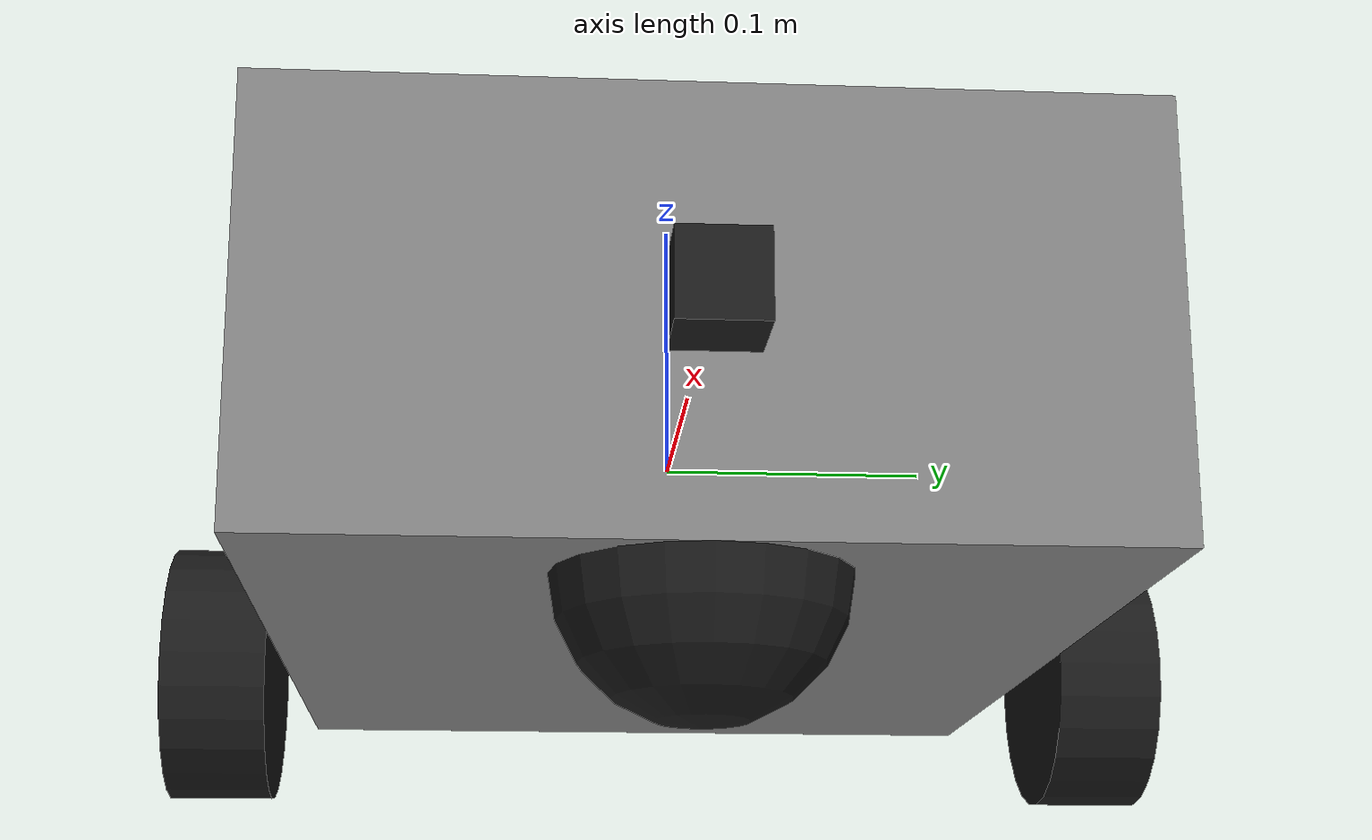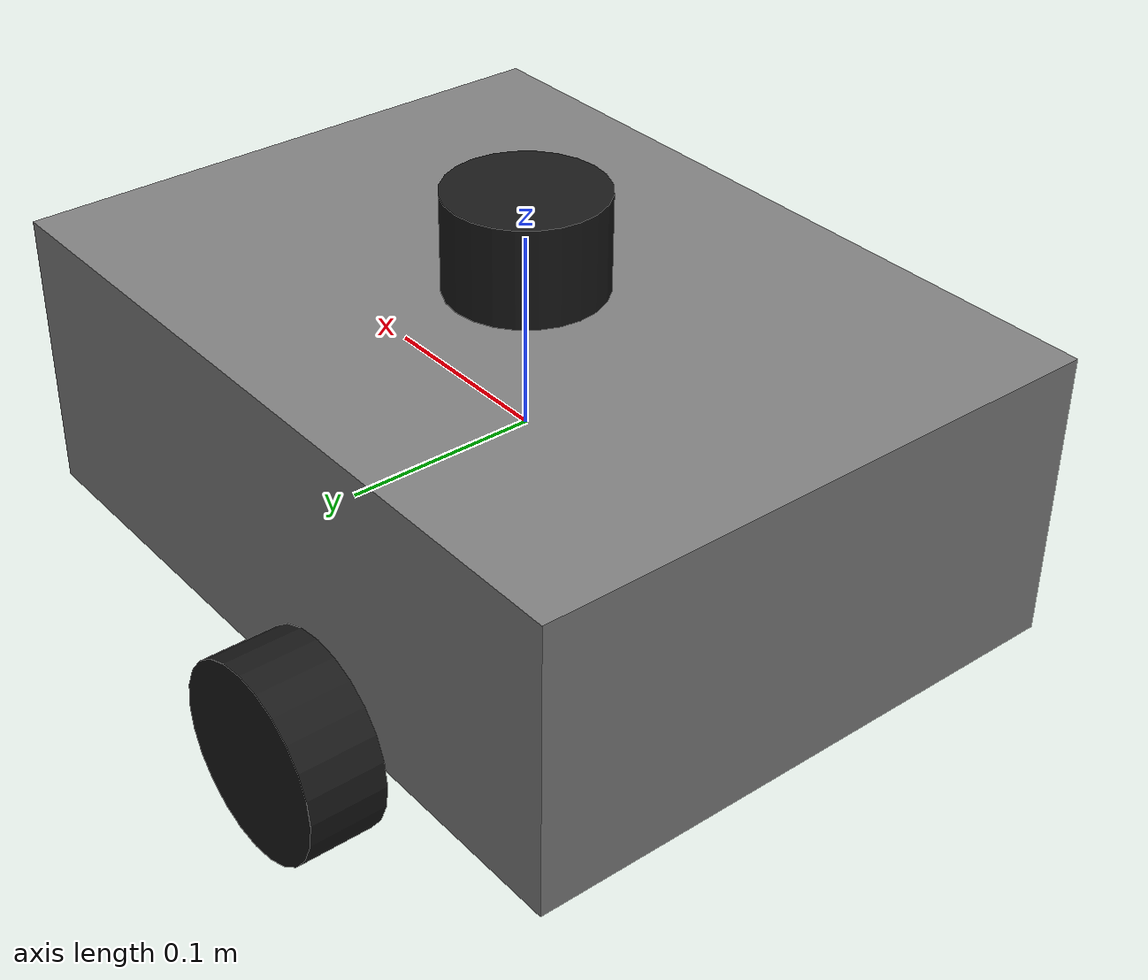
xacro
<?xml version="1.0"?>
<robot name="my_robot" xmlns:xacro="http://www.ros.org/wiki/xacro">

  <!-- ===================== Parameters ===================== -->
  <xacro:property name="base_length" value="0.40"/>
  <xacro:property name="base_width"  value="0.30"/>
  <xacro:property name="base_height" value="0.15"/>

  <xacro:property name="wheel_radius"      value="0.05"/>
  <xacro:property name="wheel_width"       value="0.04"/>
  <xacro:property name="wheel_separation"  value="0.35"/>

  <xacro:property name="caster_radius" value="0.05"/>

  <material name="grey">
    <color rgba="0.5 0.5 0.5 1"/>
  </material>
  <material name="black">
    <color rgba="0.1 0.1 0.1 1"/>
  </material>

  <!-- ===================== Base ===================== -->
  <link name="base_link">
    <visual>
      <geometry>
        <box size="${base_length} ${base_width} ${base_height}"/>
      </geometry>
      <material name="grey"/>
    </visual>
    <collision>
      <geometry>
        <box size="${base_length} ${base_width} ${base_height}"/>
      </geometry>
    </collision>
    <inertial>
      <mass value="5.0"/>
      <origin xyz="0 0 0"/>
      <inertia ixx="0.05" ixy="0" ixz="0" iyy="0.06" iyz="0" izz="0.09"/>
    </inertial>
  </link>

  <!-- ===================== Wheels ===================== -->
  <xacro:macro name="wheel" params="prefix reflect">
    <link name="${prefix}_wheel_link">
      <visual>
        <origin xyz="0 0 0" rpy="1.5708 0 0"/>
        <geometry>
          <cylinder radius="${wheel_radius}" length="${wheel_width}"/>
        </geometry>
        <material name="black"/>
      </visual>
      <collision>
        <origin xyz="0 0 0" rpy="1.5708 0 0"/>
        <geometry>
          <cylinder radius="${wheel_radius}" length="${wheel_width}"/>
        </geometry>
      </collision>
      <inertial>
        <mass value="0.5"/>
        <origin xyz="0 0 0"/>
        <inertia ixx="0.001" ixy="0" ixz="0" iyy="0.001" iyz="0" izz="0.001"/>
      </inertial>
    </link>

    <joint name="${prefix}_wheel_joint" type="continuous">
      <parent link="base_link"/>
      <child link="${prefix}_wheel_link"/>
      <origin xyz="-0.05 ${reflect*wheel_separation/2} ${-base_height/2}" rpy="0 0 0"/>
      <axis xyz="0 1 0"/>
      <dynamics damping="0.1" friction="0.0"/>
    </joint>

    <gazebo reference="${prefix}_wheel_link">
      <material>Gazebo/Black</material>
      <mu1>1.0</mu1>
      <mu2>1.0</mu2>
    </gazebo>
  </xacro:macro>

  <xacro:wheel prefix="left"  reflect="1"/>
  <xacro:wheel prefix="right" reflect="-1"/>

  <!-- ===================== Caster (передняя опора) ===================== -->
  <link name="caster_link">
    <visual>
      <geometry>
        <sphere radius="${caster_radius}"/>
      </geometry>
      <material name="black"/>
    </visual>
    <collision>
      <geometry>
        <sphere radius="${caster_radius}"/>
      </geometry>
    </collision>
    <inertial>
      <mass value="0.2"/>
      <origin xyz="0 0 0"/>
      <inertia ixx="0.0001" ixy="0" ixz="0" iyy="0.0001" iyz="0" izz="0.0001"/>
    </inertial>
  </link>

  <joint name="caster_joint" type="fixed">
    <parent link="base_link"/>
    <child link="caster_link"/>
    <origin xyz="${base_length/2 - caster_radius} 0 ${-base_height/2 - caster_radius + wheel_radius}" rpy="0 0 0"/>
  </joint>

  <gazebo reference="caster_link">
    <material>Gazebo/Black</material>
    <!-- низкое трение, чтобы каster не мешал повороту -->
    <mu1>0.0</mu1>
    <mu2>0.0</mu2>
  </gazebo>

  <gazebo reference="base_link">
    <material>Gazebo/Grey</material>
  </gazebo>

  <!-- ===================== Lidar ===================== -->
  <xacro:property name="lidar_radius" value="0.04"/>
  <xacro:property name="lidar_height" value="0.05"/>

  <link name="lidar_link">
    <visual>
      <geometry>
        <cylinder radius="${lidar_radius}" length="${lidar_height}"/>
      </geometry>
      <material name="black"/>
    </visual>
    <collision>
      <geometry>
        <cylinder radius="${lidar_radius}" length="${lidar_height}"/>
      </geometry>
    </collision>
    <inertial>
      <mass value="0.15"/>
      <origin xyz="0 0 0"/>
      <inertia ixx="0.0001" ixy="0" ixz="0" iyy="0.0001" iyz="0" izz="0.0001"/>
    </inertial>
  </link>

  <joint name="lidar_joint" type="fixed">
    <parent link="base_link"/>
    <child link="lidar_link"/>
    <!-- по центру сверху корпуса -->
    <origin xyz="0 0 ${base_height/2 + lidar_height/2}" rpy="0 0 0"/>
  </joint>

  <gazebo reference="lidar_link">
    <material>Gazebo/Black</material>
    <sensor type="ray" name="lidar_sensor">
      <pose>0 0 0 0 0 0</pose>
      <visualize>true</visualize>
      <update_rate>10</update_rate>
      <ray>
        <scan>
          <horizontal>
            <samples>360</samples>
            <resolution>1</resolution>
            <min_angle>-3.14159</min_angle>
            <max_angle>3.14159</max_angle>
          </horizontal>
        </scan>
        <range>
          <min>0.12</min>
          <max>10.0</max>
          <resolution>0.01</resolution>
        </range>
        <noise>
          <type>gaussian</type>
          <mean>0.0</mean>
          <stddev>0.01</stddev>
        </noise>
      </ray>
      <plugin name="lidar_plugin" filename="libgazebo_ros_ray_sensor.so">
        <ros>
          <namespace>/</namespace>
          <remapping>~/out:=scan</remapping>
        </ros>
        <output_type>sensor_msgs/LaserScan</output_type>
        <frame_name>lidar_link</frame_name>
      </plugin>
    </sensor>
  </gazebo>

  <!-- ===================== Camera ===================== -->
  <xacro:property name="camera_size" value="0.03"/>

  <link name="camera_link">
    <visual>
      <geometry>
        <box size="${camera_size} ${camera_size} ${camera_size}"/>
      </geometry>
      <material name="black"/>
    </visual>
    <collision>
      <geometry>
        <box size="${camera_size} ${camera_size} ${camera_size}"/>
      </geometry>
    </collision>
    <inertial>
      <mass value="0.05"/>
      <origin xyz="0 0 0"/>
      <inertia ixx="0.00001" ixy="0" ixz="0" iyy="0.00001" iyz="0" izz="0.00001"/>
    </inertial>
  </link>

  <joint name="camera_joint" type="fixed">
    <parent link="base_link"/>
    <child link="camera_link"/>
    <!-- на передней грани корпуса, по центру высоты -->
    <origin xyz="${base_length/2 + camera_size/2} 0 0" rpy="0 0 0"/>
  </joint>

  <!-- optical frame: поворот под конвенцию камер (X-вправо, Y-вниз, Z-вперёд) -->
  <link name="camera_link_optical"/>
  <joint name="camera_optical_joint" type="fixed">
    <parent link="camera_link"/>
    <child link="camera_link_optical"/>
    <origin xyz="0 0 0" rpy="${-pi/2} 0 ${-pi/2}"/>
  </joint>

  <gazebo reference="camera_link">
    <material>Gazebo/Black</material>
    <sensor type="camera" name="camera_sensor">
      <update_rate>30</update_rate>
      <camera>
        <horizontal_fov>1.3962634</horizontal_fov>
        <image>
          <width>640</width>
          <height>480</height>
          <format>R8G8B8</format>
        </image>
        <clip>
          <near>0.02</near>
          <far>300</far>
        </clip>
      </camera>
      <plugin name="camera_plugin" filename="libgazebo_ros_camera.so">
        <ros>
          <namespace>/</namespace>
        </ros>
        <camera_name>camera</camera_name>
        <frame_name>camera_link_optical</frame_name>
      </plugin>
    </sensor>
  </gazebo>

  <!-- ===================== Diff Drive Plugin (Gazebo Classic) ===================== -->
  <gazebo>
    <plugin name="diff_drive" filename="libgazebo_ros_diff_drive.so">
      <ros>
        <namespace>/</namespace>
      </ros>

      <left_joint>left_wheel_joint</left_joint>
      <right_joint>right_wheel_joint</right_joint>

      <wheel_separation>${wheel_separation}</wheel_separation>
      <wheel_diameter>${wheel_radius * 2}</wheel_diameter>

      <max_wheel_torque>20</max_wheel_torque>
      <max_wheel_acceleration>1.0</max_wheel_acceleration>

      <command_topic>cmd_vel</command_topic>

      <odom_topic>odom</odom_topic>
      <odom_frame>odom</odom_frame>
      <robot_base_frame>base_link</robot_base_frame>

      <publish_odom>true</publish_odom>
      <publish_odom_tf>true</publish_odom_tf>
      <publish_wheel_tf>true</publish_wheel_tf>

      <odometry_source>1</odometry_source>

      <covariance_x>0.0001</covariance_x>
      <covariance_y>0.0001</covariance_y>
      <covariance_yaw>0.01</covariance_yaw>
    </plugin>
  </gazebo>

</robot>
